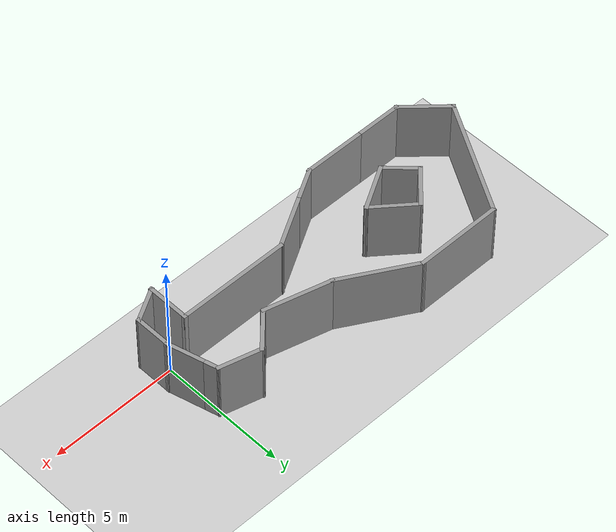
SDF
<sdf version="1.7">
 <world name="default">
  <light name="sun" type="directional">
   <pose>0 0 10 0 -0 0</pose>
   <diffuse>0.8 0.8 0.8 1</diffuse>
   <specular>0.2 0.2 0.2 1</specular>
   <attenuation>
    <range>1000</range>
    <constant>0.9</constant>
    <linear>0.01</linear>
    <quadratic>0.001</quadratic>
   </attenuation>
   <direction>-0.5 0.1 -0.9</direction>
   <spot><inner_angle>0</inner_angle><outer_angle>0</outer_angle><falloff>0</falloff></spot>
  </light>
  <model name="ground_plane">
   <static>1</static>
   <link name="link">
    <collision name="collision">
     <geometry><plane><normal>0 0 1</normal><size>100 100</size></plane></geometry>
     <surface>
      <contact><collide_bitmask>65535</collide_bitmask></contact>
      <friction><ode><mu>100</mu><mu2>50</mu2></ode></friction>
     </surface>
    </collision>
    <visual name="visual">
     <cast_shadows>0</cast_shadows>
     <geometry><plane><normal>0 0 1</normal><size>100 100</size></plane></geometry>
     <material>
      <script><uri>file://media/materials/scripts/gazebo.material</uri><name>Gazebo/Grey</name></script>
     </material>
    </visual>
   </link>
  </model>
  <gravity>0 0 -9.8</gravity>
  <magnetic_field>6e-06 2.3e-05 -4.2e-05</magnetic_field>
  <atmosphere type="adiabatic"/>
  <physics type="ode">
   <max_step_size>0.001</max_step_size>
   <real_time_factor>1</real_time_factor>
   <real_time_update_rate>1000</real_time_update_rate>
  </physics>
  <scene><ambient>0.4 0.4 0.4 1</ambient><background>0.7 0.7 0.7 1</background><shadows>1</shadows></scene>
  <audio><device>default</device></audio>
  <spherical_coordinates>
   <surface_model>EARTH_WGS84</surface_model>
   <latitude_deg>0</latitude_deg>
   <longitude_deg>0</longitude_deg>
   <elevation>0</elevation>
   <heading_deg>0</heading_deg>
  </spherical_coordinates>
  <model name="custom">
   <pose>-6.49273 2.07458 0 0 -0 0</pose>
   <link name="Wall_10">
    <collision name="Wall_10_Collision">
     <geometry><box><size>1.75 0.15 2.5</size></box></geometry>
     <pose>0 0 1.25 0 -0 0</pose>
    </collision>
    <visual name="Wall_10_Visual">
     <pose>0 0 1.25 0 -0 0</pose>
     <geometry><box><size>1.75 0.15 2.5</size></box></geometry>
     <material>
      <script><uri>file://media/materials/scripts/gazebo.material</uri><name>Gazebo/Grey</name></script>
      <ambient>1 1 1 1</ambient>
     </material>
     <meta><layer>0</layer></meta>
    </visual>
    <pose>4.46222 0.230474 0 0 -0 0.785398</pose>
   </link>
   <link name="Wall_11">
    <collision name="Wall_11_Collision">
     <geometry><box><size>1.75 0.15 2.5</size></box></geometry>
     <pose>0 0 1.25 0 -0 0</pose>
    </collision>
    <visual name="Wall_11_Visual">
     <pose>0 0 1.25 0 -0 0</pose>
     <geometry><box><size>1.75 0.15 2.5</size></box></geometry>
     <material>
      <script><uri>file://media/materials/scripts/gazebo.material</uri><name>Gazebo/Grey</name></script>
      <ambient>1 1 1 1</ambient>
     </material>
     <meta><layer>0</layer></meta>
    </visual>
    <pose>5.80065 0.589104 0 0 -0 -0.261799</pose>
   </link>
   <link name="Wall_12">
    <collision name="Wall_12_Collision">
     <geometry><box><size>0.75 0.15 2.5</size></box></geometry>
     <pose>0 0 1.25 0 -0 0</pose>
    </collision>
    <visual name="Wall_12_Visual">
     <pose>0 0 1.25 0 -0 0</pose>
     <geometry><box><size>0.75 0.15 2.5</size></box></geometry>
     <material>
      <script><uri>file://media/materials/scripts/gazebo.material</uri><name>Gazebo/Grey</name></script>
      <ambient>1 1 1 1</ambient>
     </material>
     <meta><layer>0</layer></meta>
    </visual>
    <pose>6.65103 0.092271 0 0 -0 -1.309</pose>
   </link>
   <link name="Wall_13">
    <collision name="Wall_13_Collision">
     <geometry><box><size>1.5 0.15 2.5</size></box></geometry>
     <pose>0 0 1.25 0 -0 0</pose>
    </collision>
    <visual name="Wall_13_Visual">
     <pose>0 0 1.25 0 -0 0</pose>
     <geometry><box><size>1.5 0.15 2.5</size></box></geometry>
     <material>
      <script><uri>file://media/materials/scripts/gazebo.material</uri><name>Gazebo/Grey</name></script>
      <ambient>1 1 1 1</ambient>
     </material>
     <meta><layer>0</layer></meta>
    </visual>
    <pose>6.90338 -0.849507 0 0 -0 -1.309</pose>
   </link>
   <link name="Wall_14">
    <collision name="Wall_14_Collision">
     <geometry><box><size>1.5 0.15 2.5</size></box></geometry>
     <pose>0 0 1.25 0 -0 0</pose>
    </collision>
    <visual name="Wall_14_Visual">
     <pose>0 0 1.25 0 -0 0</pose>
     <geometry><box><size>1.5 0.15 2.5</size></box></geometry>
     <material>
      <script><uri>file://media/materials/scripts/gazebo.material</uri><name>Gazebo/Grey</name></script>
      <ambient>1 1 1 1</ambient>
     </material>
     <meta><layer>0</layer></meta>
    </visual>
    <pose>7.07809 -2.17651 0 0 -0 -1.5708</pose>
   </link>
   <link name="Wall_15">
    <collision name="Wall_15_Collision">
     <geometry><box><size>1.5 0.15 2.5</size></box></geometry>
     <pose>0 0 1.25 0 -0 0</pose>
    </collision>
    <visual name="Wall_15_Visual">
     <pose>0 0 1.25 0 -0 0</pose>
     <geometry><box><size>1.5 0.15 2.5</size></box></geometry>
     <material>
      <script><uri>file://media/materials/scripts/gazebo.material</uri><name>Gazebo/Grey</name></script>
      <ambient>1 1 1 1</ambient>
     </material>
     <meta><layer>0</layer></meta>
    </visual>
    <pose>6.49352 -3.18901 0 0 -0 -2.61799</pose>
   </link>
   <link name="Wall_16">
    <collision name="Wall_16_Collision">
     <geometry><box><size>1.75 0.15 2.5</size></box></geometry>
     <pose>0 0 1.25 0 -0 0</pose>
    </collision>
    <visual name="Wall_16_Visual">
     <pose>0 0 1.25 0 -0 0</pose>
     <geometry><box><size>1.75 0.15 2.5</size></box></geometry>
     <material>
      <script><uri>file://media/materials/scripts/gazebo.material</uri><name>Gazebo/Grey</name></script>
      <ambient>1 1 1 1</ambient>
     </material>
     <meta><layer>0</layer></meta>
    </visual>
    <pose>5.90895 -2.72651 0 0 -0 1.5708</pose>
   </link>
   <link name="Wall_17">
    <collision name="Wall_17_Collision">
     <geometry><box><size>4.5 0.15 2.5</size></box></geometry>
     <pose>0 0 1.25 0 -0 0</pose>
    </collision>
    <visual name="Wall_17_Visual">
     <pose>0 0 1.25 0 -0 0</pose>
     <geometry><box><size>4.5 0.15 2.5</size></box></geometry>
     <material>
      <script><uri>file://media/materials/scripts/gazebo.material</uri><name>Gazebo/Grey</name></script>
      <ambient>1 1 1 1</ambient>
     </material>
     <meta><layer>0</layer></meta>
    </visual>
    <pose>3.73395 -1.92651 0 0 -0 3.14159</pose>
   </link>
   <link name="Wall_18">
    <collision name="Wall_18_Collision">
     <geometry><box><size>2.25 0.15 2.5</size></box></geometry>
     <pose>0 0 1.25 0 -0 0</pose>
    </collision>
    <visual name="Wall_18_Visual">
     <pose>0 0 1.25 0 -0 0</pose>
     <geometry><box><size>2.25 0.15 2.5</size></box></geometry>
     <material>
      <script><uri>file://media/materials/scripts/gazebo.material</uri><name>Gazebo/Grey</name></script>
      <ambient>1 1 1 1</ambient>
     </material>
     <meta><layer>0</layer></meta>
    </visual>
    <pose>0.649625 -2.45151 0 0 -0 -2.61799</pose>
   </link>
   <link name="Wall_19">
    <collision name="Wall_19_Collision">
     <geometry><box><size>1.5 0.15 2.5</size></box></geometry>
     <pose>0 0 1.25 0 -0 0</pose>
    </collision>
    <visual name="Wall_19_Visual">
     <pose>0 0 1.25 0 -0 0</pose>
     <geometry><box><size>1.5 0.15 2.5</size></box></geometry>
     <material>
      <script><uri>file://media/materials/scripts/gazebo.material</uri><name>Gazebo/Grey</name></script>
      <ambient>1 1 1 1</ambient>
     </material>
     <meta><layer>0</layer></meta>
    </visual>
    <pose>-0.844269 -3.31401 0 0 -0 -2.61799</pose>
   </link>
   <link name="Wall_20">
    <collision name="Wall_20_Collision">
     <geometry><box><size>2.5 0.15 2.5</size></box></geometry>
     <pose>0 0 1.25 0 -0 0</pose>
    </collision>
    <visual name="Wall_20_Visual">
     <pose>0 0 1.25 0 -0 0</pose>
     <geometry><box><size>2.5 0.15 2.5</size></box></geometry>
     <material>
      <script><uri>file://media/materials/scripts/gazebo.material</uri><name>Gazebo/Grey</name></script>
      <ambient>1 1 1 1</ambient>
     </material>
     <meta><layer>0</layer></meta>
    </visual>
    <pose>-2.60384 -3.65151 0 0 -0 3.14159</pose>
   </link>
   <link name="Wall_21">
    <collision name="Wall_21_Collision">
     <geometry><box><size>2 0.15 2.5</size></box></geometry>
     <pose>0 0 1.25 0 -0 0</pose>
    </collision>
    <visual name="Wall_21_Visual">
     <pose>0 0 1.25 0 -0 0</pose>
     <geometry><box><size>2 0.15 2.5</size></box></geometry>
     <material>
      <script><uri>file://media/materials/scripts/gazebo.material</uri><name>Gazebo/Grey</name></script>
      <ambient>1 1 1 1</ambient>
     </material>
     <meta><layer>0</layer></meta>
    </visual>
    <pose>-4.70384 -3.65151 0 0 -0 3.14159</pose>
   </link>
   <link name="Wall_22">
    <collision name="Wall_22_Collision">
     <geometry><box><size>2.12054 0.15 2.5</size></box></geometry>
     <pose>0 0 1.25 0 -0 0</pose>
    </collision>
    <visual name="Wall_22_Visual">
     <pose>0 0 1.25 0 -0 0</pose>
     <geometry><box><size>2.12054 0.15 2.5</size></box></geometry>
     <material>
      <script><uri>file://media/materials/scripts/gazebo.material</uri><name>Gazebo/Grey</name></script>
      <ambient>1 1 1 1</ambient>
     </material>
     <meta><layer>0</layer></meta>
    </visual>
    <pose>-6.35169 -2.98201 0 0 -0 2.3945</pose>
   </link>
   <link name="Wall_24">
    <collision name="Wall_24_Collision">
     <geometry><box><size>1.75 0.15 2.5</size></box></geometry>
     <pose>0 0 1.25 0 -0 0</pose>
    </collision>
    <visual name="Wall_24_Visual">
     <pose>0 0 1.25 0 -0 0</pose>
     <geometry><box><size>1.75 0.15 2.5</size></box></geometry>
     <material>
      <script><uri>file://media/materials/scripts/gazebo.material</uri><name>Gazebo/Grey</name></script>
      <ambient>1 1 1 1</ambient>
     </material>
     <meta><layer>0</layer></meta>
    </visual>
    <pose>-3.64024 -0.538191 0 0 -0 -2.35619</pose>
   </link>
   <link name="Wall_25">
    <collision name="Wall_25_Collision">
     <geometry><box><size>1.5 0.15 2.5</size></box></geometry>
     <pose>0 0 1.25 0 -0 0</pose>
    </collision>
    <visual name="Wall_25_Visual">
     <pose>0 0 1.25 0 -0 0</pose>
     <geometry><box><size>1.5 0.15 2.5</size></box></geometry>
     <material>
      <script><uri>file://media/materials/scripts/gazebo.material</uri><name>Gazebo/Grey</name></script>
      <ambient>1 1 1 1</ambient>
     </material>
     <meta><layer>0</layer></meta>
    </visual>
    <pose>-3.72862 -1.58117 0 0 -0 -0.785398</pose>
   </link>
   <link name="Wall_26">
    <collision name="Wall_26_Collision">
     <geometry><box><size>2 0.15 2.5</size></box></geometry>
     <pose>0 0 1.25 0 -0 0</pose>
    </collision>
    <visual name="Wall_26_Visual">
     <pose>0 0 1.25 0 -0 0</pose>
     <geometry><box><size>2 0.15 2.5</size></box></geometry>
     <material>
      <script><uri>file://media/materials/scripts/gazebo.material</uri><name>Gazebo/Grey</name></script>
      <ambient>1 1 1 1</ambient>
     </material>
     <meta><layer>0</layer></meta>
    </visual>
    <pose>-2.45025 -1.59597 0 0 -0 0.523599</pose>
   </link>
   <link name="Wall_27">
    <collision name="Wall_27_Collision">
     <geometry><box><size>1.98835 0.15 2.5</size></box></geometry>
     <pose>0 0 1.25 0 -0 0</pose>
    </collision>
    <visual name="Wall_27_Visual">
     <pose>0 0 1.25 0 -0 0</pose>
     <geometry><box><size>1.98835 0.15 2.5</size></box></geometry>
     <material>
      <script><uri>file://media/materials/scripts/gazebo.material</uri><name>Gazebo/Grey</name></script>
      <ambient>1 1 1 1</ambient>
     </material>
     <meta><layer>0</layer></meta>
    </visual>
    <pose>-2.36186 -0.552988 0 0 -0 2.45807</pose>
   </link>
   <link name="Wall_6">
    <collision name="Wall_6_Collision">
     <geometry><box><size>5 0.15 2.5</size></box></geometry>
     <pose>0 0 1.25 0 -0 0</pose>
    </collision>
    <visual name="Wall_6_Visual">
     <pose>0 0 1.25 0 -0 0</pose>
     <geometry><box><size>5 0.15 2.5</size></box></geometry>
     <material>
      <script><uri>file://media/materials/scripts/gazebo.material</uri><name>Gazebo/Grey</name></script>
      <ambient>1 1 1 1</ambient>
     </material>
     <meta><layer>0</layer></meta>
    </visual>
    <pose>-5.86205 -0.212394 0 0 -0 1.0472</pose>
   </link>
   <link name="Wall_7">
    <collision name="Wall_7_Collision">
     <geometry><box><size>3.5 0.15 2.5</size></box></geometry>
     <pose>0 0 1.25 0 -0 0</pose>
    </collision>
    <visual name="Wall_7_Visual">
     <pose>0 0 1.25 0 -0 0</pose>
     <geometry><box><size>3.5 0.15 2.5</size></box></geometry>
     <material>
      <script><uri>file://media/materials/scripts/gazebo.material</uri><name>Gazebo/Grey</name></script>
      <ambient>1 1 1 1</ambient>
     </material>
     <meta><layer>0</layer></meta>
    </visual>
    <pose>-2.97455 1.88772 0 0 -0 0</pose>
   </link>
   <link name="Wall_8">
    <collision name="Wall_8_Collision">
     <geometry><box><size>3.25 0.15 2.5</size></box></geometry>
     <pose>0 0 1.25 0 -0 0</pose>
    </collision>
    <visual name="Wall_8_Visual">
     <pose>0 0 1.25 0 -0 0</pose>
     <geometry><box><size>3.25 0.15 2.5</size></box></geometry>
     <material>
      <script><uri>file://media/materials/scripts/gazebo.material</uri><name>Gazebo/Grey</name></script>
      <ambient>1 1 1 1</ambient>
     </material>
     <meta><layer>0</layer></meta>
    </visual>
    <pose>0.04279 1.11272 0 0 -0 -0.523599</pose>
   </link>
   <link name="Wall_9">
    <collision name="Wall_9_Collision">
     <geometry><box><size>2.75 0.15 2.5</size></box></geometry>
     <pose>0 0 1.25 0 -0 0</pose>
    </collision>
    <visual name="Wall_9_Visual">
     <pose>0 0 1.25 0 -0 0</pose>
     <geometry><box><size>2.75 0.15 2.5</size></box></geometry>
     <material>
      <script><uri>file://media/materials/scripts/gazebo.material</uri><name>Gazebo/Grey</name></script>
      <ambient>1 1 1 1</ambient>
     </material>
     <meta><layer>0</layer></meta>
    </visual>
    <pose>2.64083 0.001253 0 0 -0 -0.261799</pose>
   </link>
   <static>1</static>
  </model>
 </world>
</sdf>
